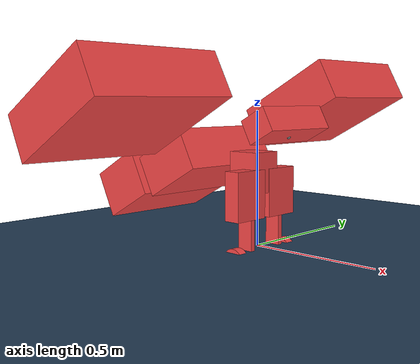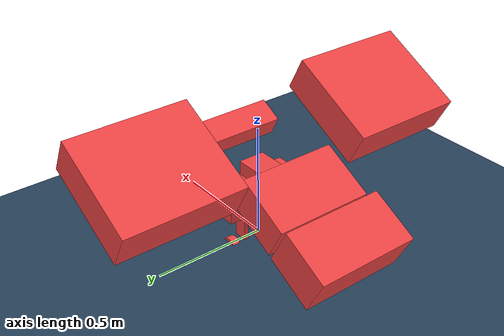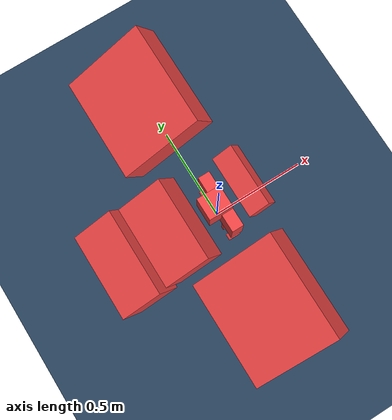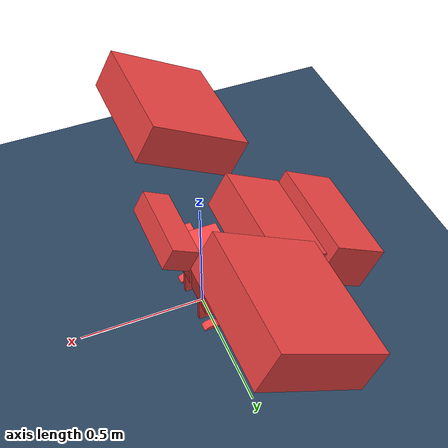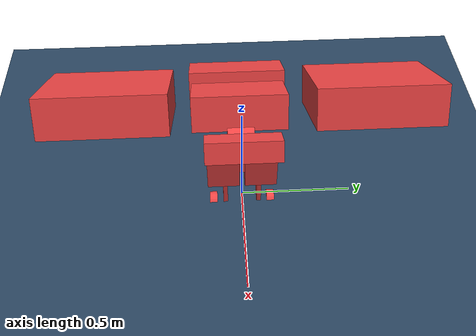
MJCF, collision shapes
<mujoco model="walking eagle we11 flat scene">
  <include file="we11.xml" />
  <statistic center="0 0 0.15" extent="0.8" />
  <visual>
    <headlight diffuse="0.6 0.6 0.6" ambient="0.3 0.3 0.3" specular="0 0 0" />
    <rgba haze="0.15 0.25 0.35 1" />
    <global azimuth="-130" elevation="-20" />
  </visual>
  <asset>
    <texture type="skybox" builtin="gradient" rgb1="0.3 0.5 0.7" rgb2="0 0 0" width="512" height="3072" />
    <texture type="2d" name="groundplane" builtin="checker" mark="edge" rgb1="0.2 0.3 0.4" rgb2="0.1 0.2 0.3" markrgb="0.8 0.8 0.8" width="300" height="300" />
    <material name="groundplane" texture="groundplane" texuniform="true" texrepeat="5 5" reflectance="0.2" />
  </asset>
  <worldbody>
    <light pos="0 0 1.5" dir="0 0 -1" directional="true" />
    <geom name="floor" size="0 0 0.05" type="plane" material="groundplane" friction="1.0 0.005 0.0001" />
  </worldbody>
  <keyframe>
    <key name="home" qpos="0 0 0.30 1 0 0 0 0.8 -1.6 0 0.8 -1.6 0" ctrl="0 0 0 0 0 0" />
  </keyframe>
</mujoco>

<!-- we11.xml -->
<mujoco model="walking_eagle_we11">
  <compiler angle="radian" meshdir="meshes_lod" autolimits="true" inertiafromgeom="false" />
  <option timestep="0.001" gravity="0.0 0.0 -9.81" integrator="RK4" />
  <asset>
    <mesh name="base_link_part_00" file="base_link_part_00.STL" />
    <mesh name="base_link_part_01" file="base_link_part_01.STL" />
    <mesh name="base_link_part_02" file="base_link_part_02.STL" />
    <mesh name="base_link_part_03" file="base_link_part_03.STL" />
    <mesh name="base_link_part_04" file="base_link_part_04.STL" />
    <material name="base_link_material" rgba="1.0 1.0 1.0 1.0" specular="0" />
    <mesh name="left_thigh_link" file="left_thigh_link.STL" />
    <material name="left_thigh_link_material" rgba="1.0 1.0 1.0 1.0" specular="0" />
    <mesh name="left_calf_link_part_00" file="left_calf_link_part_00.STL" />
    <mesh name="left_calf_link_part_01" file="left_calf_link_part_01.STL" />
    <material name="left_calf_link_material" rgba="1.0 1.0 1.0 1.0" specular="0" />
    <mesh name="left_foot_link" file="left_foot_link.STL" />
    <material name="left_foot_link_material" rgba="1.0 1.0 1.0 1.0" specular="0" />
    <mesh name="right_thigh_link" file="right_thigh_link.STL" />
    <material name="right_thigh_link_material" rgba="1.0 1.0 1.0 1.0" specular="0" />
    <mesh name="right_calf_link_part_00" file="right_calf_link_part_00.STL" />
    <mesh name="right_calf_link_part_01" file="right_calf_link_part_01.STL" />
    <material name="right_calf_link_material" rgba="1.0 1.0 1.0 1.0" specular="0" />
    <mesh name="right_foot_link" file="right_foot_link.STL" />
    <material name="right_foot_link_material" rgba="1.0 1.0 1.0 1.0" specular="0" />
    <mesh name="ancient_link" file="ancient_link.STL" />
    <material name="ancient_link_material" rgba="1.0 1.0 1.0 1.0" specular="0" />
  </asset>
  <worldbody>
    <body name="base_link" pos="0 0 0.30">
      <inertial pos="0.0031768 4.31e-05 -0.016294" mass="1.0693" fullinertia="0.0034376 0.0053496 0.0041925 1.2e-07 -0.0016365 -2.07e-06" />
      <freejoint name="base_freejoint" />
      <site name="imu" pos="0 0 0" />
      <site name="push_site" size="0.008" pos="0.145433170623286 0.0 0.110297685557172" quat="0.9702957262759973 0.0 -0.24192189559966468 0.0" />
      <geom name="base_link_visual_00" type="mesh" mesh="base_link_part_00" material="base_link_material" group="1" contype="0" conaffinity="0" />
      <geom name="base_link_visual_01" type="mesh" mesh="base_link_part_01" material="base_link_material" group="1" contype="0" conaffinity="0" />
      <geom name="base_link_visual_02" type="mesh" mesh="base_link_part_02" material="base_link_material" group="1" contype="0" conaffinity="0" />
      <geom name="base_link_visual_03" type="mesh" mesh="base_link_part_03" material="base_link_material" group="1" contype="0" conaffinity="0" />
      <geom name="base_link_visual_04" type="mesh" mesh="base_link_part_04" material="base_link_material" group="1" contype="0" conaffinity="0" />
      <geom name="base_link_collision" type="box" pos="-0.019765003 0.0 -0.024499988" rgba="0.9373 0.2667 0.2667 0.25" group="3" contype="1" conaffinity="1" size="0.063984999 0.059149999 0.075000012" />
      <site type="box" pos="-0.019765003 0.0 -0.024499988" rgba="1 0 0 0.15" size="0.063984999 0.059149999 0.075000012" name="base_link_touch_site" />
      <body name="left_thigh_joint" pos="0.01525 0.0558499999999976 -0.0431991909058736" quat="0.7071067811865462 -0.7071067811865488 0.0 0.0">
        <inertial pos="-0.00056472 0.01408423 0.04339388" mass="0.4724629" fullinertia="0.00084403 0.00023291 0.00069749 8.5e-06 -6.24e-06 0.00015111" />
        <joint name="left_thigh_joint" type="hinge" axis="0.0 0.0 1.0" damping="2.3658001235049574e-06" frictionloss="9.003633786813792e-06" armature="0.0045092746608505355" limited="true" range="-0.43 1.57" />
        <geom name="left_thigh_link_visual_00" type="mesh" mesh="left_thigh_link" material="left_thigh_link_material" group="1" contype="0" conaffinity="0" />
        <geom name="left_thigh_collision" type="box" pos="-1.2701e-05 0.057495112 0.027400002" rgba="0.9373 0.2667 0.2667 0.25" group="3" contype="1" conaffinity="1" size="0.031453958 0.0892 0.071400002" />
        <site type="box" pos="-1.2701e-05 0.057495112 0.027400002" rgba="1 0 0 0.15" size="0.031453958 0.0892 0.071400002" name="left_thigh_touch_site" />
        <body name="left_calf_joint" pos="0.0 0.135800809094126 0.0199999999999967">
          <inertial pos="-2.777e-05 0.12275622 0.01133502" mass="0.30875" fullinertia="0.00078788 5.504e-05 0.00077188 3.9e-07 -1e-07 -9.686e-05" />
          <joint name="left_calf_joint" type="hinge" axis="-0.0 -0.0 1.0" damping="1.7025403002922656e-05" frictionloss="0.20614840564125578" armature="0.0056654868268008396" limited="true" range="-2.669 -0.17" />
          <geom name="left_calf_link_visual_00" type="mesh" mesh="left_calf_link_part_00" material="left_calf_link_material" group="1" contype="0" conaffinity="0" />
          <geom name="left_calf_link_visual_01" type="mesh" mesh="left_calf_link_part_01" material="left_calf_link_material" group="1" contype="0" conaffinity="0" />
          <geom name="left_calf_shaft_collision" type="box" pos="0.0 0.07836197 0.0" rgba="0.9373 0.2667 0.2667 0.25" group="3" contype="1" conaffinity="1" size="0.03 0.098638031 0.01" />
          <site type="box" pos="0.0 0.07836197 0.0" rgba="1 0 0 0.15" size="0.03 0.098638031 0.01" name="left_calf_shaft_touch_site" />
          <body name="left_foot_joint" pos="0.0 0.149999999999687 0.0572000000000056">
            <inertial pos="-6.05e-06 3.53e-06 -0.00262162" mass="0.12784" fullinertia="7.506e-05 7.507e-05 0.00012118 1e-08 1e-08 0.0" />
            <joint name="left_foot_joint" type="hinge" axis="-0.0 -0.0 1.0" damping="0.0" frictionloss="0.0" armature="0.0008" limited="false" />
            <geom name="left_foot_link_visual_00" type="mesh" mesh="left_foot_link" material="left_foot_link_material" group="1" contype="0" conaffinity="0" />
            <geom name="left_foot_collision" type="cylinder" pos="0.0 0.0 -0.001914845" rgba="0.9373 0.2667 0.2667 0.25" group="3" contype="1" conaffinity="1" size="0.0425 0.017285155" />
            <site type="cylinder" pos="0.0 0.0 -0.001914845" rgba="1 0 0 0.15" size="0.0425 0.017285155" name="left_foot_touch_site" />
          </body>
        </body>
      </body>
      <body name="right_thigh_joint" pos="0.0152499999999884 -0.05585 -0.0431991909058702" quat="0.7071067811865462 0.7071067811865488 0.0 0.0">
        <inertial pos="-0.0005647199999883994 -0.014084230000003398 0.043393879999997616" mass="0.4724629" fullinertia="0.00084403 0.00023291 0.00069749 -8.5e-06 -6.24e-06 -0.00015111" />
        <joint name="right_thigh_joint" type="hinge" axis="-0.0 -0.0 -1.0" damping="2.3658001235049574e-06" frictionloss="9.003633786813792e-06" armature="0.0045092746608505355" limited="true" range="-0.43 1.57" />
        <geom name="right_thigh_link_visual_00" type="mesh" mesh="right_thigh_link" material="right_thigh_link_material" group="1" contype="0" conaffinity="0" />
        <geom name="right_thigh_collision" type="box" pos="-1.2701e-05 -0.057495112 0.027400002" rgba="0.9373 0.2667 0.2667 0.25" group="3" contype="1" conaffinity="1" size="0.031453958 0.0892 0.071400002" />
        <site type="box" pos="-1.2701e-05 -0.057495112 0.027400002" rgba="1 0 0 0.15" size="0.031453958 0.0892 0.071400002" name="right_thigh_touch_site" />
        <body name="right_calf_joint" pos="0.0 -0.13580080909413 0.02">
          <inertial pos="-2.7769999988399782e-05 -0.12275621999999943 0.011335019999994296" mass="0.30875" fullinertia="0.00078788 5.504e-05 0.00077188 -3.9e-07 -1e-07 9.686e-05" />
          <joint name="right_calf_joint" type="hinge" axis="-0.0 -0.0 -1.0" damping="1.7025403002922656e-05" frictionloss="0.20614840564125578" armature="0.0056654868268008396" limited="true" range="-2.669 -0.17" />
          <geom name="right_calf_link_visual_00" type="mesh" mesh="right_calf_link_part_00" material="right_calf_link_material" group="1" contype="0" conaffinity="0" />
          <geom name="right_calf_link_visual_01" type="mesh" mesh="right_calf_link_part_01" material="right_calf_link_material" group="1" contype="0" conaffinity="0" />
          <geom name="right_calf_shaft_collision" type="box" pos="0.0 -0.07836197 0.0" rgba="0.9373 0.2667 0.2667 0.25" group="3" contype="1" conaffinity="1" size="0.03 0.098638031 0.01" />
          <site type="box" pos="0.0 -0.07836197 0.0" rgba="1 0 0 0.15" size="0.03 0.098638031 0.01" name="right_calf_shaft_touch_site" />
          <body name="right_foot_joint" pos="0.0 -0.150000000000294 0.0572000000000011" quat="1.6155445744325867e-15 1.0 0.0 0.0">
            <inertial pos="-6.0499999884004035e-06 3.529999392349453e-06 0.0026216200000012124" mass="0.12784" fullinertia="7.506e-05 7.507e-05 0.00012118 1.0000000000000032e-08 -9.999999999999969e-09 -1.4898552065417316e-19" />
            <joint name="right_foot_joint" type="hinge" axis="0.0 0.0 1.0" damping="0.0" frictionloss="0.0" armature="0.0008" limited="false" />
            <geom name="right_foot_link_visual_00" type="mesh" mesh="right_foot_link" material="right_foot_link_material" group="1" contype="0" conaffinity="0" />
            <geom name="right_foot_collision" type="cylinder" pos="0.0 0.0 0.001914845" rgba="0.9373 0.2667 0.2667 0.25" group="3" contype="1" conaffinity="1" size="0.0425 0.017285155" />
            <site type="cylinder" pos="0.0 0.0 0.001914845" rgba="1 0 0 0.15" size="0.0425 0.017285155" name="right_foot_touch_site" />
          </body>
        </body>
      </body>
      <body name="ancient_link" pos="0.145433170623286 0.0 0.110297685557172" quat="0.9702957262759973 0.0 -0.24192189559966468 0.0">
        <inertial pos="-0.0551532 1.771e-05 0.05323196" mass="0.91479641" fullinertia="0.02435745 0.02291713 0.04311735 1.302e-05 0.00072183 4.12e-06" />
        <geom name="ancient_link_visual_00" type="mesh" mesh="ancient_link" material="ancient_link_material" group="1" contype="0" conaffinity="0" />
        <geom name="ancient_upper_left_collision" type="box" pos="-0.15145913884043694 0.5448607355356216 0.20693397521972656" rgba="0.9373 0.2667 0.2667 0.25" group="3" contype="1" conaffinity="1" size="0.21690913799405098 0.2588063119649887 0.08434064078330994" />
        <site type="box" pos="-0.15145913884043694 0.5448607355356216 0.20693397521972656" rgba="1 0 0 0.15" size="0.21690913799405098 0.2588063119649887 0.08434064078330994" name="ancient_upper_left_touch_site" />
        <geom name="ancient_upper_right_collision" type="box" pos="-0.15145913884043694 -0.5448104739189148 0.20693397521972656" rgba="0.9373 0.2667 0.2667 0.25" group="3" contype="1" conaffinity="1" size="0.21690913799405098 0.2588063268661499 0.08434064078330994" />
        <site type="box" pos="-0.15145913884043694 -0.5448104739189148 0.20693397521972656" rgba="1 0 0 0.15" size="0.21690913799405098 0.2588063268661499 0.08434064078330994" name="ancient_upper_right_touch_site" />
        <geom name="ancient_tail_rear_collision" type="box" pos="-0.6829455494880676 5.5149197578430176e-05 0.13310958445072174" rgba="0.9373 0.2667 0.2667 0.25" group="3" contype="1" conaffinity="1" size="0.11842022228240967 0.22869452226161957 0.09300958502292633" />
        <site type="box" pos="-0.6829455494880676 5.5149197578430176e-05 0.13310958445072174" rgba="1 0 0 0.15" size="0.11842022228240967 0.22869452226161957 0.09300958502292633" name="ancient_tail_rear_touch_site" />
        <geom name="ancient_tail_mid_collision" type="box" pos="-0.4141962379217148 2.514570951461792e-05 0.10103941895067692" rgba="0.9373 0.2667 0.2667 0.25" group="3" contype="1" conaffinity="1" size="0.12959622728824616 0.21641197937726975 0.08043941806256771" />
        <site type="box" pos="-0.4141962379217148 2.514570951461792e-05 0.10103941895067692" rgba="1 0 0 0.15" size="0.12959622728824616 0.21641197937726975 0.08043941806256771" name="ancient_tail_mid_touch_site" />
        <geom name="ancient_front_center_collision" type="box" pos="0.010047579184174538 2.5153160095214844e-05 0.04243551103770721" rgba="0.9373 0.2667 0.2667 0.25" group="3" contype="1" conaffinity="1" size="0.05540241996943951 0.15852812814712525 0.04543551285564912" />
        <site type="box" pos="0.010047579184174538 2.5153160095214844e-05 0.04243551103770721" rgba="1 0 0 0.15" size="0.05540241996943951 0.15852812814712525 0.04543551285564912" name="ancient_front_center_touch_site" />
      </body>
    </body>
  </worldbody>
  <actuator>
    <motor name="left_thigh_motor" joint="left_thigh_joint" ctrlrange="-5.5 5.5" />
    <motor name="left_calf_motor" joint="left_calf_joint" ctrlrange="-14 14" />
    <motor name="left_foot_motor" joint="left_foot_joint" ctrlrange="-5.5 5.5" />
    <motor name="right_thigh_motor" joint="right_thigh_joint" ctrlrange="-5.5 5.5" />
    <motor name="right_calf_motor" joint="right_calf_joint" ctrlrange="-14 14" />
    <motor name="right_foot_motor" joint="right_foot_joint" ctrlrange="-5.5 5.5" />
  </actuator>
  <sensor>
    <jointpos name="left_thigh_pos" joint="left_thigh_joint" />
    <jointpos name="left_calf_pos" joint="left_calf_joint" />
    <jointpos name="left_foot_pos" joint="left_foot_joint" />
    <jointpos name="right_thigh_pos" joint="right_thigh_joint" />
    <jointpos name="right_calf_pos" joint="right_calf_joint" />
    <jointpos name="right_foot_pos" joint="right_foot_joint" />
    <jointvel name="left_thigh_vel" joint="left_thigh_joint" />
    <jointvel name="left_calf_vel" joint="left_calf_joint" />
    <jointvel name="left_foot_vel" joint="left_foot_joint" />
    <jointvel name="right_thigh_vel" joint="right_thigh_joint" />
    <jointvel name="right_calf_vel" joint="right_calf_joint" />
    <jointvel name="right_foot_vel" joint="right_foot_joint" />
    <jointactuatorfrc name="left_thigh_torque" joint="left_thigh_joint" />
    <jointactuatorfrc name="left_calf_torque" joint="left_calf_joint" />
    <jointactuatorfrc name="left_foot_torque" joint="left_foot_joint" />
    <jointactuatorfrc name="right_thigh_torque" joint="right_thigh_joint" />
    <jointactuatorfrc name="right_calf_torque" joint="right_calf_joint" />
    <jointactuatorfrc name="right_foot_torque" joint="right_foot_joint" />
    <framequat name="imu_quat" objtype="site" objname="imu" noise="0.0" />
    <gyro name="imu_gyro" site="imu" noise="0.0" />
    <accelerometer name="imu_acc" site="imu" />
    <gyro name="gyro" site="imu" />
    <velocimeter name="local_linvel" site="imu" />
    <framexaxis name="xvector" objtype="site" objname="imu" />
    <frameyaxis name="yvector" objtype="site" objname="imu" />
    <framezaxis name="upvector" objtype="site" objname="imu" />
    <touch name="base_link_touch" site="base_link_touch_site" />
    <touch name="left_thigh_touch" site="left_thigh_touch_site" />
    <touch name="left_calf_shaft_touch" site="left_calf_shaft_touch_site" />
    <touch name="left_foot_touch" site="left_foot_touch_site" />
    <touch name="right_thigh_touch" site="right_thigh_touch_site" />
    <touch name="right_calf_shaft_touch" site="right_calf_shaft_touch_site" />
    <touch name="right_foot_touch" site="right_foot_touch_site" />
    <touch name="ancient_upper_left_touch" site="ancient_upper_left_touch_site" />
    <touch name="ancient_upper_right_touch" site="ancient_upper_right_touch_site" />
    <touch name="ancient_tail_rear_touch" site="ancient_tail_rear_touch_site" />
    <touch name="ancient_tail_mid_touch" site="ancient_tail_mid_touch_site" />
    <touch name="ancient_front_center_touch" site="ancient_front_center_touch_site" />
  </sensor>
  <contact>
    <exclude body1="base_link" body2="left_thigh_joint" />
    <exclude body1="base_link" body2="left_calf_joint" />
    <exclude body1="base_link" body2="left_foot_joint" />
    <exclude body1="base_link" body2="right_thigh_joint" />
    <exclude body1="base_link" body2="right_calf_joint" />
    <exclude body1="base_link" body2="right_foot_joint" />
    <exclude body1="base_link" body2="ancient_link" />
    <exclude body1="left_thigh_joint" body2="left_calf_joint" />
    <exclude body1="left_thigh_joint" body2="left_foot_joint" />
    <exclude body1="left_thigh_joint" body2="right_thigh_joint" />
    <exclude body1="left_thigh_joint" body2="right_calf_joint" />
    <exclude body1="left_thigh_joint" body2="right_foot_joint" />
    <exclude body1="left_thigh_joint" body2="ancient_link" />
    <exclude body1="left_calf_joint" body2="left_foot_joint" />
    <exclude body1="left_calf_joint" body2="right_thigh_joint" />
    <exclude body1="left_calf_joint" body2="right_calf_joint" />
    <exclude body1="left_calf_joint" body2="right_foot_joint" />
    <exclude body1="left_calf_joint" body2="ancient_link" />
    <exclude body1="left_foot_joint" body2="right_thigh_joint" />
    <exclude body1="left_foot_joint" body2="right_calf_joint" />
    <exclude body1="left_foot_joint" body2="right_foot_joint" />
    <exclude body1="left_foot_joint" body2="ancient_link" />
    <exclude body1="right_thigh_joint" body2="right_calf_joint" />
    <exclude body1="right_thigh_joint" body2="right_foot_joint" />
    <exclude body1="right_thigh_joint" body2="ancient_link" />
    <exclude body1="right_calf_joint" body2="right_foot_joint" />
    <exclude body1="right_calf_joint" body2="ancient_link" />
    <exclude body1="right_foot_joint" body2="ancient_link" />
  </contact>
</mujoco>
